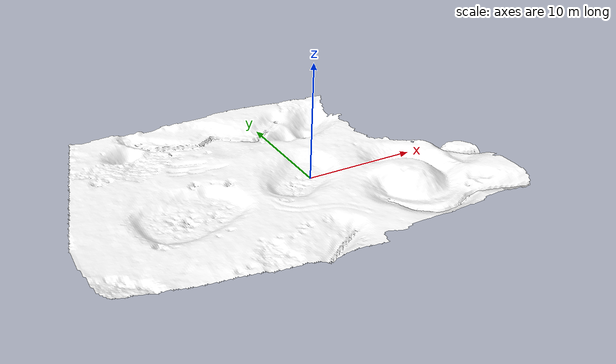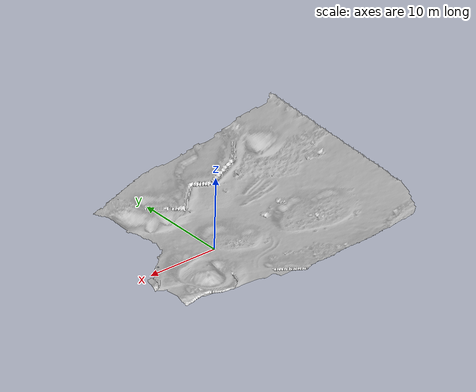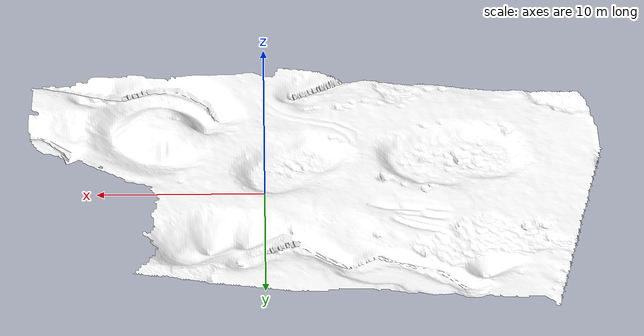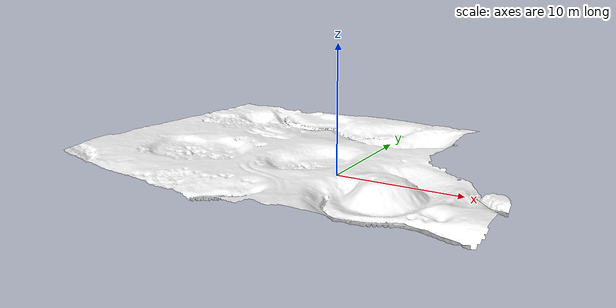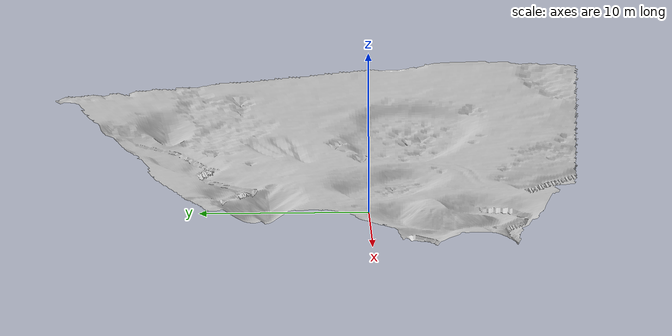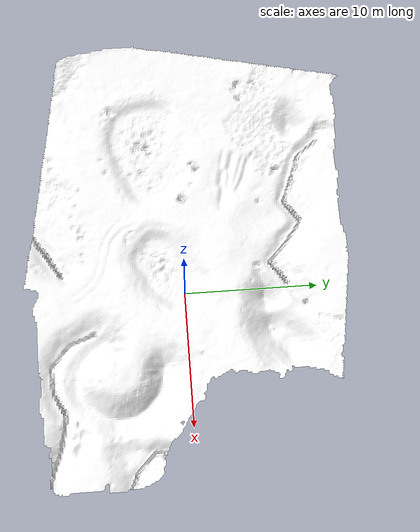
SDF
<?xml version="1.0"?>
<sdf version="1.7">
  <model name="mars_yard">
    <static>true</static><self_collide>false</self_collide>
    <link name="terrain_link">
      <visual name="terrain_visual">
        <cast_shadows>false</cast_shadows>
        <geometry>
          <mesh>
            <uri>model://mars_yard/meshes/mars_yard_exact_visual_closed.obj</uri>
          </mesh>
        </geometry>
        <material>
          <ambient>1 1 1 1</ambient>
          <diffuse>1 1 1 1</diffuse>
          <double_sided>true</double_sided>
          <pbr>
            <metal>
              <albedo_map>model://mars_yard/materials/textures/marsyard_coordsys_exact_closed.png</albedo_map>
            </metal>
          </pbr>
        </material>
      </visual>
      <collision name="terrain_collision">
        <geometry><mesh><uri>model://mars_yard/meshes/mars_yard_exact_collision.obj</uri></mesh></geometry>
        <surface>
          <friction><ode><mu>1.20</mu><mu2>1.15</mu2><slip1>0.008</slip1><slip2>0.012</slip2></ode></friction>
          <contact><ode><kp>25000000</kp><kd>3</kd><max_vel>0.05</max_vel><min_depth>0.001</min_depth></ode></contact>
          <bounce><restitution_coefficient>0.0</restitution_coefficient><threshold>100000</threshold></bounce>
        </surface>
      </collision>
    </link>
  </model>
</sdf>
